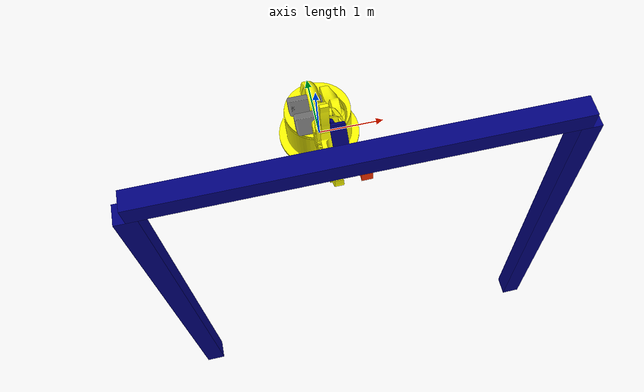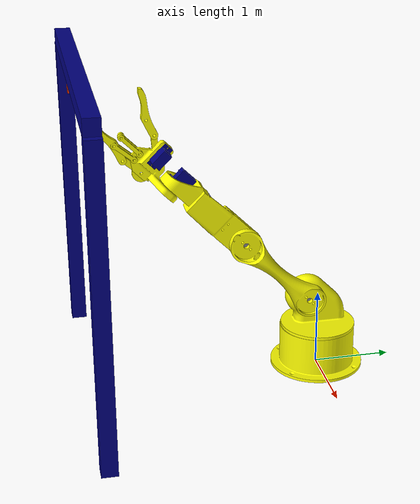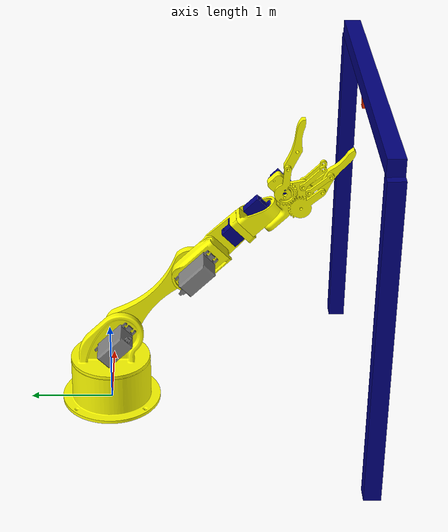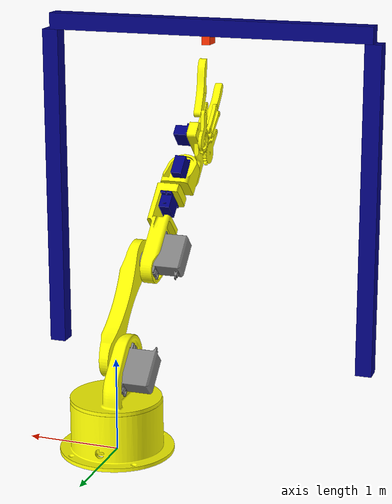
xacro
<?xml version="1.0"?>
<robot name="sort_robotic_arm" xmlns:xacro="http://www.ros.org/wiki/xacro">

    <xacro:include filename="common_properties.xacro" />
    <xacro:include filename="arm_links.xacro" />
    <xacro:include filename="arm_joints.xacro" />
    <xacro:include filename="camera_plugin.xacro" />
    <xacro:include filename="common_properties_gazebo.xacro" />

</robot>

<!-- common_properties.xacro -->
<robot xmlns:xacro="http://www.ros.org/wiki/xacro">

    <material name="blue">
        <color rgba="0 0 0.5 1" />
    </material>

    <material name="yellow">
        <color rgba="1 1 0 1" />
    </material>

    <material name="grey">
        <color rgba="0.5 0.5 0.5 1" />
    </material>

    <material name="red">
        <color rgba="1 0.2 0 1" />
    </material>

    <xacro:macro name="tower_link" params="name m l w h xyz rpy">
        <link name="${name}_tower_link">
            <visual>
                <geometry>
                    <box size="${l} ${w} ${h}"/>
                </geometry>
                <origin xyz="${xyz}" rpy="${rpy}"/>
                <material name="blue" />
            </visual>
            <collision>
                <geometry>
                    <box size="${l} ${w} ${h}" />
                </geometry>
                <origin xyz="${xyz}" rpy="${rpy}"/>
            </collision>
            <inertial>
                <origin xyz="${xyz}" rpy="${rpy}"/>
                <mass value="${m}" />
                <inertia ixx="${(m/12) * (h*h + l*l)}" ixy="0" ixz="0"
                        iyy="${(m/12) * (w*w + l*l)}" iyz="0"
                        izz="${(m/12) * (h*h + w*w)}" />
            </inertial>
        </link>
    </xacro:macro>

    <xacro:macro name="box_link" params="name file xyz_visual rpy_visual size mass color
                                      xyz_collision rpy_collision ixx ixy ixz iyy iyz izz" >
        <link name="${name}_link">
            <visual>
                <geometry>
                    <mesh filename="${file}" scale="0.01 0.01 0.01"/>
                </geometry>
                <origin xyz="${xyz_visual}" rpy="${rpy_visual}"/>
                <material name="${color}" />
            </visual>
            <collision>
                <geometry>
                    <box size="${size}" />
                </geometry>
                <origin xyz="${xyz_collision}" rpy="${rpy_collision}"/>
            </collision>
            <inertial>
                <origin xyz="${xyz_collision}" rpy="${rpy_collision}"/>
                <mass value="${mass}" />
                <inertia ixx="${ixx}" ixy="${ixy}" ixz="${ixz}"
                        iyy="${iyy}" iyz="${iyz}"
                        izz="${izz}" />
            </inertial>
        </link>
    </xacro:macro>

    <xacro:macro name="cylinder_link" params="name file xyz_visual rpy_visual radius length
                            mass color xyz_collision rpy_collision ixx ixy ixz iyy iyz izz" >
        <link name="${name}_link">
            <visual>
                <geometry>
                    <mesh filename="${file}" scale="0.01 0.01 0.01"/>
                </geometry>
                <origin xyz="${xyz_visual}" rpy="${rpy_visual}"/>
                <material name="${color}" />
            </visual>
            <collision>
                <geometry>
                    <cylinder radius="${radius}" length="${length}" />
                </geometry>
                <origin xyz="${xyz_collision}" rpy="${rpy_collision}"/>
            </collision>
            <inertial>
                <origin xyz="${xyz_collision}" rpy="${rpy_collision}"/>
                <mass value="${mass}" />
                <inertia ixx="${ixx}" ixy="${ixy}" ixz="${ixz}"
                        iyy="${iyy}" iyz="${iyz}"
                        izz="${izz}" />
            </inertial>
        </link>
    </xacro:macro>

    <xacro:macro name="fixed_joint" params="name parent child xyz rpy" >
        <joint name="${name}_joint" type="fixed">
            <parent link="${parent}"/>
            <child link="${child}"/>
            <origin xyz="${xyz}" rpy="${rpy}"/>
        </joint>
    </xacro:macro>

    <xacro:macro name="continuous_joint" params="name parent child xyz rpy xyz_rotate" >
        <joint name="${name}_joint" type="continuous">
            <parent link="${parent}"/>
            <child link="${child}"/>
            <origin xyz="${xyz}" rpy="${rpy}"/>
            <axis xyz="${xyz_rotate}"/>
        </joint>
    </xacro:macro>

    <xacro:macro name="mimic_continuous_joint" params="name parent child xyz rpy xyz_rotate" >
        <joint name="${name}_joint" type="continuous">
            <parent link="${parent}"/>
            <child link="${child}"/>
            <origin xyz="${xyz}" rpy="${rpy}"/>
            <axis xyz="${xyz_rotate}"/>
            <mimic joint="micro_servo3_gear2_joint" multiplier="1.0" offset="0.0"/>
        </joint>
    </xacro:macro>

    <xacro:macro name="revolute_joint" params="name parent child xyz rpy xyz_rotate
                                               lower upper effort velocity" >
        <joint name="${name}_joint" type="revolute">
            <parent link="${parent}"/>
            <child link="${child}"/>
            <origin xyz="${xyz}" rpy="${rpy}"/>
            <axis xyz="${xyz_rotate}"/>
            <limit lower="${lower}" upper="${upper}" effort="${effort}" velocity="${velocity}"/>
        </joint>
    </xacro:macro>
</robot>

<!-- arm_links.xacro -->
<robot xmlns:xacro="http://www.ros.org/wiki/xacro">

    <link name="ground_link" />

    <xacro:cylinder_link name="base" file="package://sort_robotic_arm_description/meshes/Arm_Base/Base.STL"
            radius="0.60625" length="0.56" color="yellow" xyz_visual="-0.60625 0.60625 0"
            rpy_visual="1.57 0 0" xyz_collision="0 0 0.28" rpy_collision="0 0 0" mass="0.12115"
            ixx="0.16" ixy="0.0" ixz="0.0" iyy="0.17" iyz="0.0" izz="0.26" />

    <xacro:box_link name="servo1" file="package://sort_robotic_arm_description/meshes/Servos/Servo_MG996R.STL"
            size="0.558 0.205 0.474" color="grey" xyz_visual="0.1025 0.1825 0.12"
            rpy_visual="0 0 3.14" xyz_collision="0.087 -0.0229 0.364" rpy_collision="0 0 0" mass="0.06365"
            ixx="0.018" ixy="0.0" ixz="0.0" iyy="0.01" iyz="0.0" izz="0.01" />

    <xacro:cylinder_link name="waist" file="package://sort_robotic_arm_description/meshes/Arm_Base/Waist.STL"
            radius="0.485" length="0.16" color="yellow" xyz_visual="-0.485 -0.485 0"
            rpy_visual="0 0 0" xyz_collision="0 0 0.08" rpy_collision="0 0 0" mass="0.09702"
            ixx="0.085" ixy="0.0" ixz="-0.003" iyy="0.0006" iyz="-0.008" izz="0.07" />

    <xacro:box_link name="servo2" file="package://sort_robotic_arm_description/meshes/Servos/Servo_MG996R.STL"
            size="0.558 0.205 0.474" color="grey" xyz_visual="-0.41 -0.5515 0.2883"
            rpy_visual="0 1.57 0" xyz_collision="-0.216 -0.258 0.107" rpy_collision="1.57 0 0" mass="0.06365"
            ixx="0.018" ixy="0.0" ixz="0.0" iyy="0.01" iyz="0.0" izz="0.01" />

    <xacro:cylinder_link name="arm1" file="package://sort_robotic_arm_description/meshes/Arm_Base/Arm1.STL"
            radius="0.21" length="1.62" color="yellow" xyz_visual="0.3125 0.21 -0.23"
            rpy_visual="0 0 -3.14" xyz_collision="0.025 -0.63 -0.05" rpy_collision="1.57 0 0" mass="0.05231"
            ixx="0.01" ixy="0.0" ixz="0.0" iyy="0.00006" iyz="0.0" izz="0.01" />

    <xacro:box_link name="servo3" file="package://sort_robotic_arm_description/meshes/Servos/Servo_MG996R.STL"
            size="0.558 0.205 0.474" color="grey" xyz_visual="-0.1025 0.1825 0.474"
            rpy_visual="3.14 0 0" xyz_collision="0 -0.1 0.237" rpy_collision="0 0 1.57" mass="0.06365"
            ixx="0.018" ixy="0.0" ixz="0.0" iyy="0.01" iyz="0.0" izz="0.01" />

    <xacro:box_link name="arm2" file="package://sort_robotic_arm_description/meshes/Arm_Base/Arm2.STL"
            size="0.38 1.15 0.27" color="yellow" xyz_visual="-0.19 -0.2525 -0.242"
            rpy_visual="0 0 0" xyz_collision="0 0.35 -0.135" rpy_collision="0 0 0" mass="0.05161"
            ixx="0.00058" ixy="0.0" ixz="0.0" iyy="0.00009" iyz="0.0" izz="0.00062" />

    <xacro:box_link name="micro_servo1" file="package://sort_robotic_arm_description/meshes/Servos/Micro_Servo.STL"
            size="0.326 0.124 0.299" color="blue" xyz_visual="-0.115 0.6645 -0.12"
            rpy_visual="-1.57 0 0" xyz_collision="-0.1 0.05 0" rpy_collision="0 0 1.57" mass="0.01285"
            ixx="0.000013" ixy="0.0" ixz="0.0" iyy="0.00008" iyz="0.0" izz="0.00008" />

    <xacro:box_link name="arm3" file="package://sort_robotic_arm_description/meshes/Arm_Base/Arm3.STL"
            size="0.28 0.33 0.46" color="yellow" xyz_visual="-0.14 0 0.215"
            rpy_visual="-1.57 0 0" xyz_collision="0 0.2 0" rpy_collision="-1.57 0 0" mass="0.0206"
            ixx="0.000063" ixy="0.0" ixz="0.000007" iyy="0.00005" iyz="0.0" izz="0.000032" />

    <xacro:box_link name="micro_servo2" file="package://sort_robotic_arm_description/meshes/Servos/Micro_Servo.STL"
            size="0.326 0.124 0.299" color="blue" xyz_visual="-0.098 0.34 0.055"
            rpy_visual="0 1.57 0" xyz_collision="0 0.218 0" rpy_collision="1.57 0 1.57" mass="0.01285"
            ixx="0.000013" ixy="0.0" ixz="0.0" iyy="0.00008" iyz="0.0" izz="0.00008" />

    <xacro:box_link name="gripper_base" file="package://sort_robotic_arm_description/meshes/Arm_Gripper/Gripper_Base.STL"
            size="0.533 0.77 0.24" color="yellow" xyz_visual="-0.14 -0.63 -0.14"
            rpy_visual="0 0 0" xyz_collision="0.1 -0.28 0" rpy_collision="0 0 0" mass="0.02131"
            ixx="0.00009" ixy="0.000025" ixz="0.0000055" iyy="0.00005" iyz="0.000016" izz="0.00012" />

    <xacro:box_link name="micro_servo3" file="package://sort_robotic_arm_description/meshes/Servos/Micro_Servo.STL"
            size="0.326 0.124 0.299" color="blue" xyz_visual="0.117 -0.38 -0.1037"
            rpy_visual="0 0 1.57" xyz_collision="0.23 -0.38 0" rpy_collision="0 0 0" mass="0.01285"
            ixx="0.000013" ixy="0.0" ixz="0.0" iyy="0.00008" iyz="0.0" izz="0.00008" />

    <xacro:cylinder_link name="gear2" file="package://sort_robotic_arm_description/meshes/Arm_Gripper/Gear2.STL"
            radius="0.133" length="0.04" color="yellow" xyz_visual="0.1209 -0.3475 0"
            rpy_visual="0 -1.57 0" xyz_collision="-0.01 0 0" rpy_collision="0 0 0" mass="0.00277"
            ixx="0.00005" ixy="0.0" ixz="0.0" iyy="0.0001" iyz="0.0" izz="0.000046" />

    <xacro:cylinder_link name="gear1" file="package://sort_robotic_arm_description/meshes/Arm_Gripper/Gear1.STL"
            radius="0.133" length="0.04" color="yellow" xyz_visual="0.1209 -0.1463 0"
            rpy_visual="0 -1.57 0" xyz_collision="-0.01 0 0" rpy_collision="0 0 0" mass="0.00332"
            ixx="0.00005" ixy="0.0" ixz="0.0" iyy="0.0001" iyz="0.0" izz="0.000046" />

    <xacro:macro name="gripper_link_link" params="prefix xyz_collision">
        <link name="${prefix}_gripper_link_link">
            <visual>
                <geometry>
                    <mesh filename="package://sort_robotic_arm_description/meshes/Arm_Gripper/Gripper_Link.STL" scale="0.01 0.01 0.01"/>
                </geometry>
                <origin xyz="0.04 0.04 0" rpy="0 0 3.14" />
                <material name="yellow" />
            </visual>
            <collision>
                <geometry>
                    <box size="0.08 0.4 0.04" />
                </geometry>
                <origin xyz="${xyz_collision}" rpy="0 0 0" />
            </collision>
            <inertial>
                <origin xyz="${xyz_collision}" rpy="0 0 0" />
                <mass value="0.001" />
                <inertia ixx="0.0000013" ixy="0.0" ixz="0.0"
                        iyy="0.000000045" iyz="0.0"
                        izz="0.0000013" />
            </inertial>
        </link>
    </xacro:macro>

    <xacro:gripper_link_link prefix="up_right" xyz_collision="0 -0.15 0.02" />
    <xacro:gripper_link_link prefix="up_left" xyz_collision="0 -0.15 0" />
    <xacro:gripper_link_link prefix="down_right" xyz_collision="0 -0.15 0" />
    <xacro:gripper_link_link prefix="down_left" xyz_collision="0 -0.15 0" />

    <xacro:macro name="gripper_link" params="prefix xyz_visual rpy">
        <link name="${prefix}_gripper_link">
            <visual>
                <geometry>
                    <mesh filename="package://sort_robotic_arm_description/meshes/Arm_Gripper/Gripper.STL" scale="0.01 0.01 0.01"/>
                </geometry>
                <origin xyz="${xyz_visual}" rpy="${rpy}" />
                <material name="yellow" />
            </visual>
            <collision>
                <geometry>
                    <mesh filename="package://sort_robotic_arm_description/meshes/Arm_Gripper/Gripper.STL" scale="0.01 0.01 0.01"/>
                </geometry>
                <origin xyz="${xyz_visual}" rpy="${rpy}" />
            </collision>
            <inertial>
                <origin xyz="0 0.28 0" rpy="${rpy}" />
                <mass value="0.00589" />
                <inertia ixx="0.000018" ixy="0.0" ixz="0.0"
                        iyy="0.0000016" iyz="0.0"
                        izz="0.000019" />
            </inertial>
        </link>
    </xacro:macro>

    <xacro:gripper_link prefix="right" xyz_visual="-0.1462 -0.05 -0.085" rpy="0 0 0" />
    <xacro:gripper_link prefix="left" xyz_visual="0.153 -0.05 0" rpy="0 3.14 0"  />
</robot>

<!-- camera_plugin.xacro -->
<robot xmlns:xacro="http://www.ros.org/wiki/xacro">

    <xacro:macro name="box_inertia" params="m l w h xyz rpy" >
        <inertial>
            <origin xyz="${xyz}" rpy="${rpy}"/>
            <mass value="${m}" />
            <inertia ixx="${(m/12) * (h*h + l*l)}" ixy="0" ixz="0"
                    iyy="${(m/12) * (w*w + l*l)}" iyz="0"
                    izz="${(m/12) * (h*h + w*w)}" />
        </inertial>
    </xacro:macro>

    <xacro:tower_link name="right" m="0.1" l="4" w="0.2" h="0.2" xyz="0 0 0" rpy="0 1.57 0"/>

    <xacro:fixed_joint name="ground_tower_right_tower_joint" parent="ground_link" child="right_tower_link"
                       xyz="-2 -3 2" rpy="0 0 0" />

    <xacro:tower_link name="left" m="0.1" l="4" w="0.2" h="0.2" xyz="0 0 0" rpy="0 1.57 0"/>

    <xacro:fixed_joint name="ground_tower_left_tower_joint" parent="ground_link" child="left_tower_link"
                       xyz="2 -3 2" rpy="0 0 0" />

    <xacro:tower_link name="up" m="0.1" l="4" w="0.2" h="0.2" xyz="0 0 0" rpy="0 0 0"/>

    <xacro:fixed_joint name="right_tower_up_tower_joint" parent="right_tower_link" child="up_tower_link"
                       xyz="2 0 2.1" rpy="0 0 0" />

    <link name="camera_link">
        <visual>
            <geometry>
                <box size="0.1 0.1 0.2"/>
            </geometry>
            <origin xyz="0 0 0" rpy="0 0 0"/>
            <material name="red" />
        </visual>
        <collision>
            <geometry>
                <box size="0.1 0.1 0.2" />
            </geometry>
            <origin xyz="0 0 0" rpy="0 0 0"/>
        </collision>
        <xacro:box_inertia m="0.002" l="0.1" w="0.1" h="0.2"
                           xyz="0 0 0" rpy="0 0 0"/>
    </link>

    <xacro:fixed_joint name="up_tower_camera_joint" parent="up_tower_link" child="camera_link"
                       xyz="0 0 -0.15" rpy="0 1.57 1.57" />

    <link name="camera_optical_frame"/>

    <joint name="camera_optical_joint" type="fixed">
        <parent link="camera_link"/>
        <child link="camera_optical_frame"/>
        <origin xyz="0 0 0" rpy="0 0 0"/>
    </joint>

    <gazebo reference="camera_link">
        <material>Gazebo/Red</material>
        <sensor name="camera" type="camera">
            <pose> 0 0 0 0 0 0 </pose>
            <visualize>true</visualize>
            <update_rate>5.0</update_rate>
            <camera>
                <horizontal_fov>1.085595</horizontal_fov>
                <image>
                    <width>640</width>
                    <height>480</height>
                    <format>R8G8B8</format>
                </image>
                <clip>
                    <near>0.1</near>
                    <far>10.0</far>
                </clip>
            </camera>
            <plugin name="camera_controller" filename="libgazebo_ros_camera.so">
                <frame_name>camera_optical_frame</frame_name>
            </plugin>
        </sensor>
    </gazebo>
</robot>
